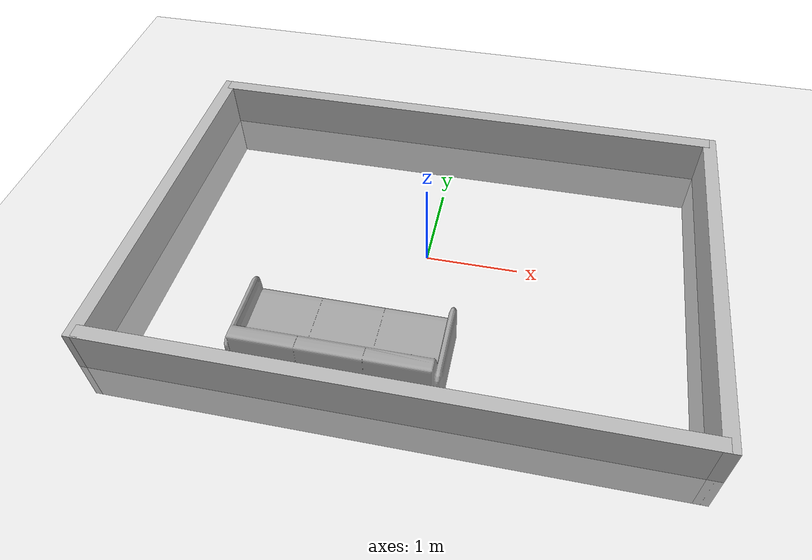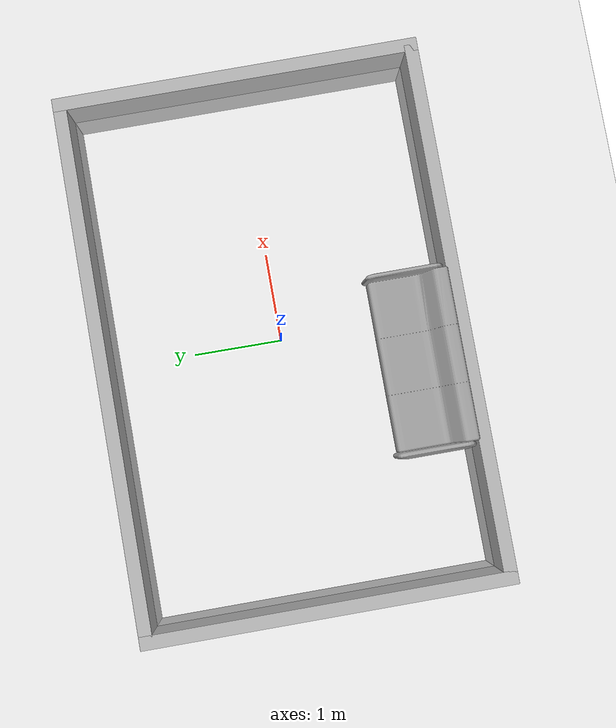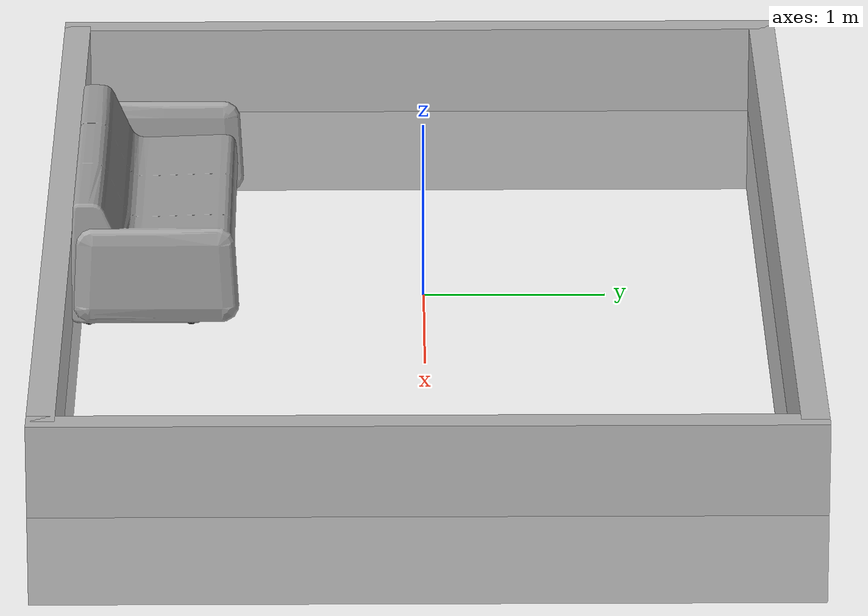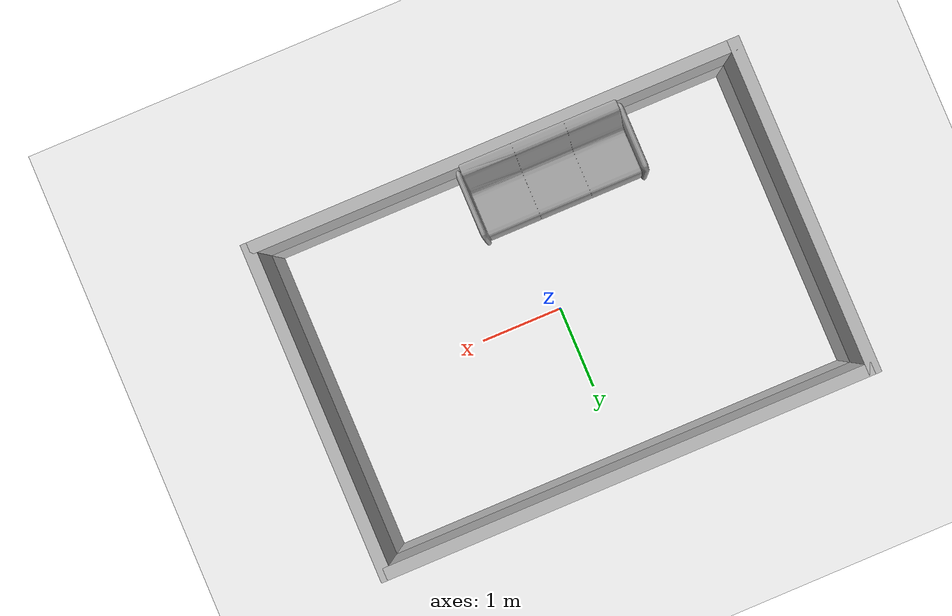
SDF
<sdf version="1.4">
 <world name="default">
  <include><uri>model://ground_plane</uri></include>
  <include><uri>model://sun</uri></include>
  <include><uri>model://sofa</uri><pose>-0.5 -1.55 0 0 0 1.571</pose></include>
  <model name="room">
   <link name="Wall_1">
    <collision name="Wall_1_Collision"><geometry><box><size>6 0.15 1</size></box></geometry></collision>
    <visual name="Wall_1_Visual"><geometry><box><size>6 0.15 1</size></box></geometry></visual>
    <pose>0 2 0 0 -0 0</pose>
   </link>
   <link name="Wall_2">
    <collision name="Wall_2_Collision"><geometry><box><size>6 0.15 1</size></box></geometry></collision>
    <visual name="Wall_2_Visual"><geometry><box><size>6 0.15 1</size></box></geometry></visual>
    <pose>0 -2 0 0 -0 0</pose>
   </link>
   <link name="Wall_3">
    <collision name="Wall_3_Collision"><geometry><box><size>4.15 0.15 1</size></box></geometry></collision>
    <visual name="Wall_3_Visual"><geometry><box><size>4.15 0.15 1</size></box></geometry></visual>
    <pose>3 0 0 0 -0 1.571</pose>
   </link>
   <link name="Wall_4">
    <collision name="Wall_4_Collision"><geometry><box><size>4.15 0.15 1</size></box></geometry></collision>
    <visual name="Wall_4_Visual"><geometry><box><size>4.15 0.15 1</size></box></geometry></visual>
    <pose>-3 0 0 0 -0 1.571</pose>
   </link>
   <static>1</static>
  </model>
 </world>
</sdf>

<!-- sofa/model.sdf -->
<sdf version="1.5">
  <model name="sofa">
    <link name="link">
      <pose>0 0 0 0 0 0</pose>
      <gravity>false</gravity>
      <inertial>
	<mass>10</mass>
      </inertial>
      <visual name="visual">
	<geometry>
	  <mesh>
	    <uri>model://sofa/meshes/sofa.dae</uri>
	  </mesh>
	</geometry>
      </visual>
      <collision name="sofa">
	<geometry>
	  <mesh>
	    <uri>model://sofa/meshes/sofa.dae</uri>
	  </mesh>
	</geometry>
      </collision>
    </link>
    <static>1</static>
  </model>
</sdf>
